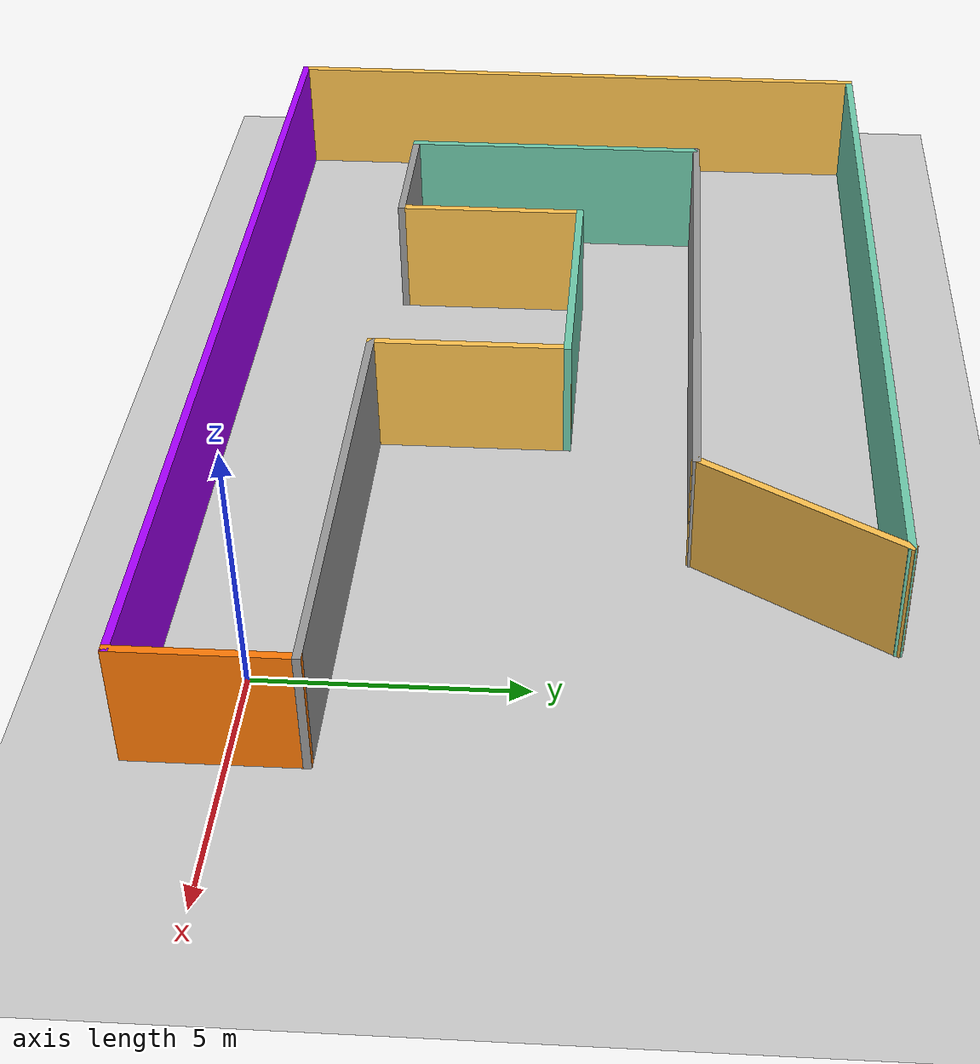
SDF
<sdf version="1.6">
 <world name="default">
  <light name="sun" type="directional">
   <pose>0 0 10 0 -0 0</pose>
   <diffuse>0.8 0.8 0.8 1</diffuse>
   <specular>0.2 0.2 0.2 1</specular>
   <attenuation>
    <range>1000</range>
    <constant>0.9</constant>
    <linear>0.01</linear>
    <quadratic>0.001</quadratic>
   </attenuation>
   <direction>-0.5 0.1 -0.9</direction>
  </light>
  <model name="ground_plane">
   <static>1</static>
   <link name="link">
    <collision name="collision">
     <geometry><plane><normal>0 0 1</normal><size>100 100</size></plane></geometry>
     <surface>
      <contact><collide_bitmask>65535</collide_bitmask></contact>
      <friction><ode><mu>100</mu><mu2>50</mu2></ode></friction>
     </surface>
    </collision>
    <visual name="visual">
     <cast_shadows>0</cast_shadows>
     <geometry><plane><normal>0 0 1</normal><size>100 100</size></plane></geometry>
     <material>
      <script><uri>file://media/materials/scripts/gazebo.material</uri><name>Gazebo/Grey</name></script>
     </material>
    </visual>
   </link>
  </model>
  <gravity>0 0 -9.8</gravity>
  <magnetic_field>6e-06 2.3e-05 -4.2e-05</magnetic_field>
  <atmosphere type="adiabatic"/>
  <physics name="default_physics" default="0" type="ode">
   <max_step_size>0.001</max_step_size>
   <real_time_factor>1</real_time_factor>
   <real_time_update_rate>1000</real_time_update_rate>
  </physics>
  <scene><ambient>0.4 0.4 0.4 1</ambient><background>0.7 0.7 0.7 1</background><shadows>1</shadows></scene>
  <spherical_coordinates>
   <surface_model>EARTH_WGS84</surface_model>
   <latitude_deg>0</latitude_deg>
   <longitude_deg>0</longitude_deg>
   <elevation>0</elevation>
   <heading_deg>0</heading_deg>
  </spherical_coordinates>
  <model name="environment">
   <pose>-8.25107 4.84412 0 0 -0 0</pose>
   <link name="Wall_10">
    <collision name="Wall_10_Collision">
     <geometry><box><size>3 0.15 2.5</size></box></geometry>
     <pose>0 0 1.25 0 -0 0</pose>
    </collision>
    <visual name="Wall_10_Visual">
     <pose>0 0 1.25 0 -0 0</pose>
     <geometry><box><size>3 0.15 2.5</size></box></geometry>
     <material>
      <script><uri>file://media/materials/scripts/gazebo.material</uri><name>Gazebo/Grey</name></script>
      <ambient>1 1 1 1</ambient>
     </material>
     <meta><layer>0</layer></meta>
    </visual>
    <pose>-5.2 -3.46398 0 0 -0 3.14159</pose>
   </link>
   <link name="Wall_11">
    <collision name="Wall_11_Collision">
     <geometry><box><size>6.5 0.15 2.5</size></box></geometry>
     <pose>0 0 1.25 0 -0 0</pose>
    </collision>
    <visual name="Wall_11_Visual">
     <pose>0 0 1.25 0 -0 0</pose>
     <geometry><box><size>6.5 0.15 2.5</size></box></geometry>
     <material>
      <script><uri>file://media/materials/scripts/gazebo.material</uri><name>Gazebo/Grey</name></script>
      <ambient>0.435294 0.796078 0.67451 1</ambient>
     </material>
     <meta><layer>0</layer></meta>
    </visual>
    <pose>-6.625 -0.288975 0 0 -0 1.5708</pose>
   </link>
   <link name="Wall_12">
    <collision name="Wall_12_Collision">
     <geometry><box><size>11.5 0.15 2.5</size></box></geometry>
     <pose>0 0 1.25 0 -0 0</pose>
    </collision>
    <visual name="Wall_12_Visual">
     <pose>0 0 1.25 0 -0 0</pose>
     <geometry><box><size>11.5 0.15 2.5</size></box></geometry>
     <material>
      <script><uri>file://media/materials/scripts/gazebo.material</uri><name>Gazebo/Grey</name></script>
      <ambient>1 1 1 1</ambient>
     </material>
     <meta><layer>0</layer></meta>
    </visual>
    <pose>-0.95 2.88603 0 0 -0 0</pose>
   </link>
   <link name="Wall_16">
    <collision name="Wall_16_Collision">
     <geometry><box><size>17.25 0.15 2.5</size></box></geometry>
     <pose>0 0 1.25 0 -0 0</pose>
    </collision>
    <visual name="Wall_16_Visual">
     <pose>0 0 1.25 0 -0 0</pose>
     <geometry><box><size>17.25 0.15 2.5</size></box></geometry>
     <material>
      <script><uri>file://media/materials/scripts/gazebo.material</uri><name>Gazebo/Grey</name></script>
      <ambient>0.435294 0.796078 0.67451 1</ambient>
     </material>
     <meta><layer>0</layer></meta>
    </visual>
    <pose>-1.625 6.53603 0 0 -0 0</pose>
   </link>
   <link name="Wall_17">
    <collision name="Wall_17_Collision">
     <geometry><box><size>4.41175 0.15 2.5</size></box></geometry>
     <pose>0 0 1.25 0 -0 0</pose>
    </collision>
    <visual name="Wall_17_Visual">
     <pose>0 0 1.25 0 -0 0</pose>
     <geometry><box><size>4.41175 0.15 2.5</size></box></geometry>
     <material>
      <script><uri>file://media/materials/scripts/gazebo.material</uri><name>Gazebo/Grey</name></script>
      <ambient>1 0.764706 0.305882 1</ambient>
     </material>
     <meta><layer>0</layer></meta>
    </visual>
    <pose>5.825 4.71103 0 0 0 -2.11323</pose>
   </link>
   <link name="Wall_3">
    <collision name="Wall_3_Collision">
     <geometry><box><size>13.25 0.15 2.5</size></box></geometry>
     <pose>0 0 1.25 0 -0 0</pose>
    </collision>
    <visual name="Wall_3_Visual">
     <pose>0 0 1.25 0 -0 0</pose>
     <geometry><box><size>13.25 0.15 2.5</size></box></geometry>
     <material>
      <script><uri>file://media/materials/scripts/gazebo.material</uri><name>Gazebo/Grey</name></script>
      <ambient>1 0.764706 0.305882 1</ambient>
     </material>
     <meta><layer>0</layer></meta>
    </visual>
    <pose>-10.175 -0.013975 0 0 0 -1.5708</pose>
   </link>
   <link name="Wall_4">
    <collision name="Wall_4_Collision">
     <geometry><box><size>20.5 0.15 2.5</size></box></geometry>
     <pose>0 0 1.25 0 -0 0</pose>
    </collision>
    <visual name="Wall_4_Visual">
     <pose>0 0 1.25 0 -0 0</pose>
     <geometry><box><size>20.5 0.15 2.5</size></box></geometry>
     <material>
      <script><uri>file://media/materials/scripts/gazebo.material</uri><name>Gazebo/Grey</name></script>
      <ambient>0.666667 0 1 1</ambient>
     </material>
     <meta><layer>0</layer></meta>
    </visual>
    <pose>0 -6.56398 0 0 -0 0</pose>
   </link>
   <link name="Wall_5">
    <collision name="Wall_5_Collision">
     <geometry><box><size>3.25 0.15 2.5</size></box></geometry>
     <pose>0 0 1.25 0 -0 0</pose>
    </collision>
    <visual name="Wall_5_Visual">
     <pose>0 0 1.25 0 -0 0</pose>
     <geometry><box><size>3.25 0.15 2.5</size></box></geometry>
     <material>
      <script><uri>file://media/materials/scripts/gazebo.material</uri><name>Gazebo/Grey</name></script>
      <ambient>0.996078 0.47451 0.0196078 1</ambient>
     </material>
     <meta><layer>0</layer></meta>
    </visual>
    <pose>10.175 -5.01398 0 0 -0 1.5708</pose>
   </link>
   <link name="Wall_6">
    <collision name="Wall_6_Collision">
     <geometry><box><size>9 0.15 2.5</size></box></geometry>
     <pose>0 0 1.25 0 -0 0</pose>
    </collision>
    <visual name="Wall_6_Visual">
     <pose>0 0 1.25 0 -0 0</pose>
     <geometry><box><size>9 0.15 2.5</size></box></geometry>
     <material>
      <script><uri>file://media/materials/scripts/gazebo.material</uri><name>Gazebo/Grey</name></script>
      <ambient>1 1 1 1</ambient>
     </material>
     <meta><layer>0</layer></meta>
    </visual>
    <pose>5.75 -3.46398 0 0 -0 3.14159</pose>
   </link>
   <link name="Wall_7">
    <collision name="Wall_7_Collision">
     <geometry><box><size>4 0.15 2.5</size></box></geometry>
     <pose>0 0 1.25 0 -0 0</pose>
    </collision>
    <visual name="Wall_7_Visual">
     <pose>0 0 1.25 0 -0 0</pose>
     <geometry><box><size>4 0.15 2.5</size></box></geometry>
     <material>
      <script><uri>file://media/materials/scripts/gazebo.material</uri><name>Gazebo/Grey</name></script>
      <ambient>1 0.764706 0.305882 1</ambient>
     </material>
     <meta><layer>0</layer></meta>
    </visual>
    <pose>1.325 -1.53897 0 0 -0 1.5708</pose>
   </link>
   <link name="Wall_8">
    <collision name="Wall_8_Collision">
     <geometry><box><size>5.25 0.15 2.5</size></box></geometry>
     <pose>0 0 1.25 0 -0 0</pose>
    </collision>
    <visual name="Wall_8_Visual">
     <pose>0 0 1.25 0 -0 0</pose>
     <geometry><box><size>5.25 0.15 2.5</size></box></geometry>
     <material>
      <script><uri>file://media/materials/scripts/gazebo.material</uri><name>Gazebo/Grey</name></script>
      <ambient>0.435294 0.796078 0.67451 1</ambient>
     </material>
     <meta><layer>0</layer></meta>
    </visual>
    <pose>-1.225 0.386025 0 0 -0 3.14159</pose>
   </link>
   <link name="Wall_9">
    <collision name="Wall_9_Collision">
     <geometry><box><size>4 0.15 2.5</size></box></geometry>
     <pose>0 0 1.25 0 -0 0</pose>
    </collision>
    <visual name="Wall_9_Visual">
     <pose>0 0 1.25 0 -0 0</pose>
     <geometry><box><size>4 0.15 2.5</size></box></geometry>
     <material>
      <script><uri>file://media/materials/scripts/gazebo.material</uri><name>Gazebo/Grey</name></script>
      <ambient>1 0.764706 0.305882 1</ambient>
     </material>
     <meta><layer>0</layer></meta>
    </visual>
    <pose>-3.775 -1.53897 0 0 0 -1.5708</pose>
   </link>
   <static>1</static>
  </model>
 </world>
</sdf>
